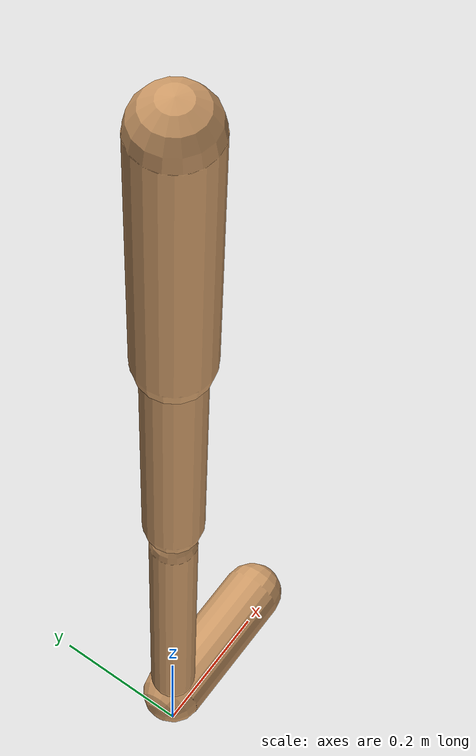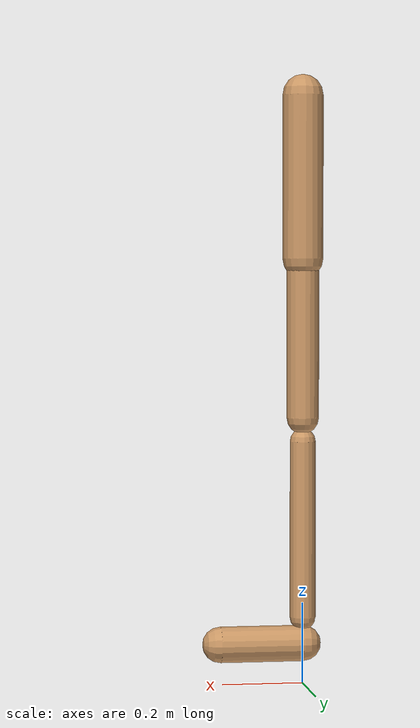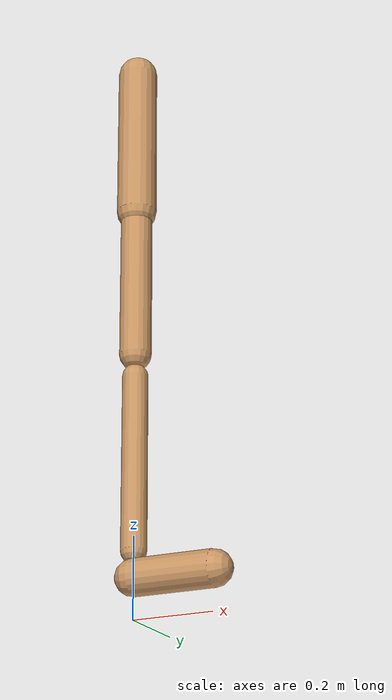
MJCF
<mujoco model="walker2d">
  <compiler angle="degree" coordinate="global" inertiafromgeom="true" />
  <default>
    <joint armature="0.01" damping=".1" limited="true" />
    <geom conaffinity="0" condim="3" contype="1" density="1000" friction="0.8 .1 .1" rgba="0.8 0.6 .4 1" />
  </default>
  <option integrator="RK4" timestep="0.002" />
  <worldbody>

    <body name="torso" pos="0 0 -0.12352707786277264">
      <joint armature="0" axis="1 0 0" damping="0" limited="false" name="ignorex" pos="0 0 0" stiffness="0" type="slide" />
      <joint armature="0" axis="0 0 1" damping="0" limited="false" name="ignorez" pos="0 0 0" ref="1.25" stiffness="0" type="slide" />
      <joint armature="0" axis="0 1 0" damping="0" limited="false" name="ignorey" pos="0 0 0" stiffness="0" type="hinge" />
      <geom fromto="0 0 1.45 0 0 1.05" name="torso_geom" size="0.050454016404582705" type="capsule" />
      <body name="thigh">
        <joint axis="0 -1 0" name="thigh_joint" pos="0 0 1.05" range="-150 0" type="hinge" />
        <geom fromto="0.0 0.0 1.05 0.0 0.0 0.6585128263560501" name="thigh_geom" size="0.03998793887335089" type="capsule" />
        <body name="leg" pos="0.0 0.0 0.05851282635605015">
          <joint axis="0 -1 0" name="leg_joint" pos="0 0 0.6" range="-150 0" type="hinge" />
          <geom fromto="0.0 0.0 0.6 0.0 0.0 0.16501425150672244" name="leg_geom" size="0.03199035109868072" type="capsule" />
          <body name="foot" pos="0.0 0.0 0.06501425150672244">
            <joint axis="0 -1 0" name="foot_joint" pos="0 0 0.1" range="-45 45" type="hinge" />
            <geom fromto="-0.0 0.0 0.1 0.20489764596683077 0.0 0.1" name="foot_geom" size="0.04481574585708653" type="capsule" />
          </body>
        </body>
      </body>

      <body name="thigh_left">
        <joint axis="0 -1 0" name="thigh_left_joint" pos="0 0 1.05" range="-150 0" type="hinge" />
        <geom fromto="0.0 0.0 1.05 0.0 0.0 0.6585128263560501" name="thigh_left_geom" rgba=".7 .3 .6 1" size="0.03998793887335089" type="capsule" />
        <body name="leg_left" pos="0.0 0.0 0.05851282635605015">
          <joint axis="0 -1 0" name="leg_left_joint" pos="0 0 0.6" range="-150 0" type="hinge" />
          <geom fromto="0.0 0.0 0.6 0.0 0.0 0.16501425150672244" name="leg_left_geom" rgba=".7 .3 .6 1" size="0.03199035109868072" type="capsule" />
          <body name="foot_left" pos="0.0 0.0 0.06501425150672244">
            <joint axis="0 -1 0" name="foot_left_joint" pos="0 0 0.1" range="-45 45" type="hinge" />
            <geom fromto="-0.0 0.0 0.1 0.20489764596683077 0.0 0.1" name="foot_left_geom" rgba=".7 .3 .6 1" size="0.04481574585708653" type="capsule" />
          </body>
        </body>
      </body>
    </body>
  </worldbody>
  <actuator>

    <motor ctrllimited="true" ctrlrange="-1.0 1.0" gear="100" joint="thigh_joint" />
    <motor ctrllimited="true" ctrlrange="-1.0 1.0" gear="100" joint="leg_joint" />
    <motor ctrllimited="true" ctrlrange="-1.0 1.0" gear="100" joint="foot_joint" />
    <motor ctrllimited="true" ctrlrange="-1.0 1.0" gear="100" joint="thigh_left_joint" />
    <motor ctrllimited="true" ctrlrange="-1.0 1.0" gear="100" joint="leg_left_joint" />
    <motor ctrllimited="true" ctrlrange="-1.0 1.0" gear="100" joint="foot_left_joint" />

  </actuator>
</mujoco>
